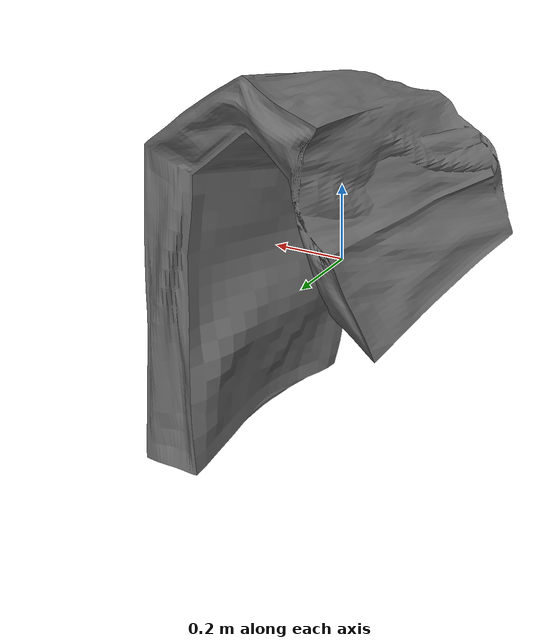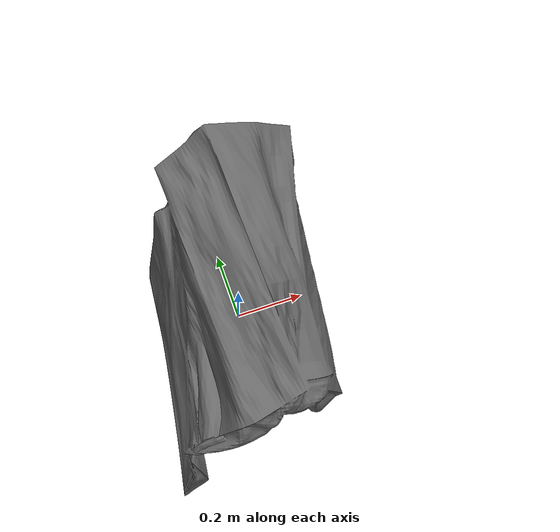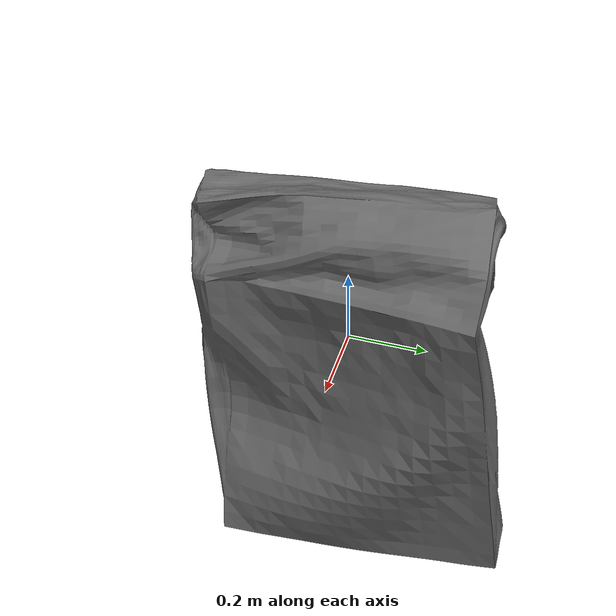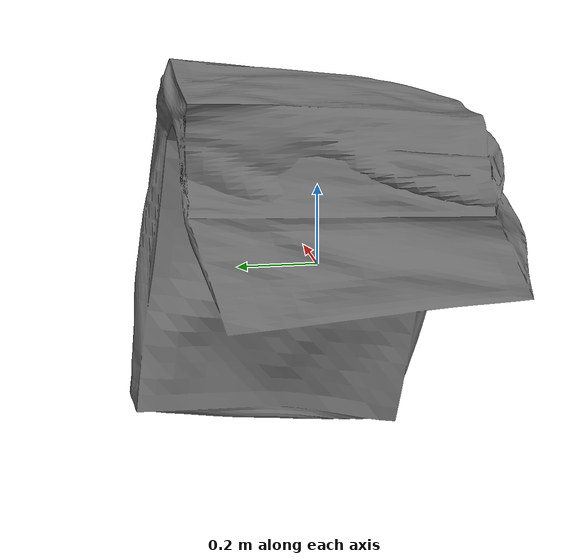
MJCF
<mujoco model="towels">
  <asset>
  <texture file="visual/ceramic.png" name="tex-towels" type="2d" />
  <material name="towels" reflectance="0.5" texrepeat="1 1" texture="tex-towels" texuniform="false" />
  <mesh file="visual/model_normalized_0.obj" name="model_normalized_0_vis" scale="1.0 1.0 1.0" /><mesh file="collision/model_normalized_collision_22.obj" name="model_normalized_collision_22._coll" scale="1.0 1.0 1.0" /><mesh file="collision/model_normalized_collision_4.obj" name="model_normalized_collision_4._coll" scale="1.0 1.0 1.0" /><mesh file="collision/model_normalized_collision_27.obj" name="model_normalized_collision_27._coll" scale="1.0 1.0 1.0" /><mesh file="collision/model_normalized_collision_6.obj" name="model_normalized_collision_6._coll" scale="1.0 1.0 1.0" /><mesh file="collision/model_normalized_collision_25.obj" name="model_normalized_collision_25._coll" scale="1.0 1.0 1.0" /><mesh file="collision/model_normalized_collision_26.obj" name="model_normalized_collision_26._coll" scale="1.0 1.0 1.0" /><mesh file="collision/model_normalized_collision_29.obj" name="model_normalized_collision_29._coll" scale="1.0 1.0 1.0" /><mesh file="collision/model_normalized_collision_19.obj" name="model_normalized_collision_19._coll" scale="1.0 1.0 1.0" /><mesh file="collision/model_normalized_collision_12.obj" name="model_normalized_collision_12._coll" scale="1.0 1.0 1.0" /><mesh file="collision/model_normalized_collision_17.obj" name="model_normalized_collision_17._coll" scale="1.0 1.0 1.0" /><mesh file="collision/model_normalized_collision_20.obj" name="model_normalized_collision_20._coll" scale="1.0 1.0 1.0" /><mesh file="collision/model_normalized_collision_14.obj" name="model_normalized_collision_14._coll" scale="1.0 1.0 1.0" /><mesh file="collision/model_normalized_collision_18.obj" name="model_normalized_collision_18._coll" scale="1.0 1.0 1.0" /><mesh file="collision/model_normalized_collision_15.obj" name="model_normalized_collision_15._coll" scale="1.0 1.0 1.0" /><mesh file="collision/model_normalized_collision_30.obj" name="model_normalized_collision_30._coll" scale="1.0 1.0 1.0" /><mesh file="collision/model_normalized_collision_31.obj" name="model_normalized_collision_31._coll" scale="1.0 1.0 1.0" /><mesh file="collision/model_normalized_collision_23.obj" name="model_normalized_collision_23._coll" scale="1.0 1.0 1.0" /><mesh file="collision/model_normalized_collision_28.obj" name="model_normalized_collision_28._coll" scale="1.0 1.0 1.0" /><mesh file="collision/model_normalized_collision_13.obj" name="model_normalized_collision_13._coll" scale="1.0 1.0 1.0" /><mesh file="collision/model_normalized_collision_5.obj" name="model_normalized_collision_5._coll" scale="1.0 1.0 1.0" /><mesh file="collision/model_normalized_collision_24.obj" name="model_normalized_collision_24._coll" scale="1.0 1.0 1.0" /><mesh file="collision/model_normalized_collision_16.obj" name="model_normalized_collision_16._coll" scale="1.0 1.0 1.0" /><mesh file="collision/model_normalized_collision_11.obj" name="model_normalized_collision_11._coll" scale="1.0 1.0 1.0" /><mesh file="collision/model_normalized_collision_1.obj" name="model_normalized_collision_1._coll" scale="1.0 1.0 1.0" /><mesh file="collision/model_normalized_collision_10.obj" name="model_normalized_collision_10._coll" scale="1.0 1.0 1.0" /><mesh file="collision/model_normalized_collision_21.obj" name="model_normalized_collision_21._coll" scale="1.0 1.0 1.0" /><mesh file="collision/model_normalized_collision_8.obj" name="model_normalized_collision_8._coll" scale="1.0 1.0 1.0" /><mesh file="collision/model_normalized_collision_7.obj" name="model_normalized_collision_7._coll" scale="1.0 1.0 1.0" /><mesh file="collision/model_normalized_collision_3.obj" name="model_normalized_collision_3._coll" scale="1.0 1.0 1.0" /><mesh file="collision/model_normalized_collision_2.obj" name="model_normalized_collision_2._coll" scale="1.0 1.0 1.0" /><mesh file="collision/model_normalized_collision_9.obj" name="model_normalized_collision_9._coll" scale="1.0 1.0 1.0" /><mesh file="collision/model_normalized_collision_0.obj" name="model_normalized_collision_0._coll" scale="1.0 1.0 1.0" /><material name="material_0" specular="0.4000000000000001" shininess="0.001" rgba="0.40000000 0.40000000 0.40000000 1.0" /></asset>
  <worldbody>
    <body>
      <body name="object" euler="1.7 0 0">
      <geom solimp="0.998 0.998 0.001" solref="0.001 1" density="100" friction="0.95 0.3 0.1" type="mesh" mesh="model_normalized_0_vis" conaffinity="0" contype="0" group="1" material="material_0" />
      <geom solimp="0.998 0.998 0.001" solref="0.001 1" density="100" friction="0.95 0.3 0.1" type="mesh" mesh="model_normalized_collision_22._coll" group="0" rgba="0.8 0.8 0.8 0.0" /><geom solimp="0.998 0.998 0.001" solref="0.001 1" density="100" friction="0.95 0.3 0.1" type="mesh" mesh="model_normalized_collision_4._coll" group="0" rgba="0.8 0.8 0.8 0.0" /><geom solimp="0.998 0.998 0.001" solref="0.001 1" density="100" friction="0.95 0.3 0.1" type="mesh" mesh="model_normalized_collision_27._coll" group="0" rgba="0.8 0.8 0.8 0.0" /><geom solimp="0.998 0.998 0.001" solref="0.001 1" density="100" friction="0.95 0.3 0.1" type="mesh" mesh="model_normalized_collision_6._coll" group="0" rgba="0.8 0.8 0.8 0.0" /><geom solimp="0.998 0.998 0.001" solref="0.001 1" density="100" friction="0.95 0.3 0.1" type="mesh" mesh="model_normalized_collision_25._coll" group="0" rgba="0.8 0.8 0.8 0.0" /><geom solimp="0.998 0.998 0.001" solref="0.001 1" density="100" friction="0.95 0.3 0.1" type="mesh" mesh="model_normalized_collision_26._coll" group="0" rgba="0.8 0.8 0.8 0.0" /><geom solimp="0.998 0.998 0.001" solref="0.001 1" density="100" friction="0.95 0.3 0.1" type="mesh" mesh="model_normalized_collision_29._coll" group="0" rgba="0.8 0.8 0.8 0.0" /><geom solimp="0.998 0.998 0.001" solref="0.001 1" density="100" friction="0.95 0.3 0.1" type="mesh" mesh="model_normalized_collision_19._coll" group="0" rgba="0.8 0.8 0.8 0.0" /><geom solimp="0.998 0.998 0.001" solref="0.001 1" density="100" friction="0.95 0.3 0.1" type="mesh" mesh="model_normalized_collision_12._coll" group="0" rgba="0.8 0.8 0.8 0.0" /><geom solimp="0.998 0.998 0.001" solref="0.001 1" density="100" friction="0.95 0.3 0.1" type="mesh" mesh="model_normalized_collision_17._coll" group="0" rgba="0.8 0.8 0.8 0.0" /><geom solimp="0.998 0.998 0.001" solref="0.001 1" density="100" friction="0.95 0.3 0.1" type="mesh" mesh="model_normalized_collision_20._coll" group="0" rgba="0.8 0.8 0.8 0.0" /><geom solimp="0.998 0.998 0.001" solref="0.001 1" density="100" friction="0.95 0.3 0.1" type="mesh" mesh="model_normalized_collision_14._coll" group="0" rgba="0.8 0.8 0.8 0.0" /><geom solimp="0.998 0.998 0.001" solref="0.001 1" density="100" friction="0.95 0.3 0.1" type="mesh" mesh="model_normalized_collision_18._coll" group="0" rgba="0.8 0.8 0.8 0.0" /><geom solimp="0.998 0.998 0.001" solref="0.001 1" density="100" friction="0.95 0.3 0.1" type="mesh" mesh="model_normalized_collision_15._coll" group="0" rgba="0.8 0.8 0.8 0.0" /><geom solimp="0.998 0.998 0.001" solref="0.001 1" density="100" friction="0.95 0.3 0.1" type="mesh" mesh="model_normalized_collision_30._coll" group="0" rgba="0.8 0.8 0.8 0.0" /><geom solimp="0.998 0.998 0.001" solref="0.001 1" density="100" friction="0.95 0.3 0.1" type="mesh" mesh="model_normalized_collision_31._coll" group="0" rgba="0.8 0.8 0.8 0.0" /><geom solimp="0.998 0.998 0.001" solref="0.001 1" density="100" friction="0.95 0.3 0.1" type="mesh" mesh="model_normalized_collision_23._coll" group="0" rgba="0.8 0.8 0.8 0.0" /><geom solimp="0.998 0.998 0.001" solref="0.001 1" density="100" friction="0.95 0.3 0.1" type="mesh" mesh="model_normalized_collision_28._coll" group="0" rgba="0.8 0.8 0.8 0.0" /><geom solimp="0.998 0.998 0.001" solref="0.001 1" density="100" friction="0.95 0.3 0.1" type="mesh" mesh="model_normalized_collision_13._coll" group="0" rgba="0.8 0.8 0.8 0.0" /><geom solimp="0.998 0.998 0.001" solref="0.001 1" density="100" friction="0.95 0.3 0.1" type="mesh" mesh="model_normalized_collision_5._coll" group="0" rgba="0.8 0.8 0.8 0.0" /><geom solimp="0.998 0.998 0.001" solref="0.001 1" density="100" friction="0.95 0.3 0.1" type="mesh" mesh="model_normalized_collision_24._coll" group="0" rgba="0.8 0.8 0.8 0.0" /><geom solimp="0.998 0.998 0.001" solref="0.001 1" density="100" friction="0.95 0.3 0.1" type="mesh" mesh="model_normalized_collision_16._coll" group="0" rgba="0.8 0.8 0.8 0.0" /><geom solimp="0.998 0.998 0.001" solref="0.001 1" density="100" friction="0.95 0.3 0.1" type="mesh" mesh="model_normalized_collision_11._coll" group="0" rgba="0.8 0.8 0.8 0.0" /><geom solimp="0.998 0.998 0.001" solref="0.001 1" density="100" friction="0.95 0.3 0.1" type="mesh" mesh="model_normalized_collision_1._coll" group="0" rgba="0.8 0.8 0.8 0.0" /><geom solimp="0.998 0.998 0.001" solref="0.001 1" density="100" friction="0.95 0.3 0.1" type="mesh" mesh="model_normalized_collision_10._coll" group="0" rgba="0.8 0.8 0.8 0.0" /><geom solimp="0.998 0.998 0.001" solref="0.001 1" density="100" friction="0.95 0.3 0.1" type="mesh" mesh="model_normalized_collision_21._coll" group="0" rgba="0.8 0.8 0.8 0.0" /><geom solimp="0.998 0.998 0.001" solref="0.001 1" density="100" friction="0.95 0.3 0.1" type="mesh" mesh="model_normalized_collision_8._coll" group="0" rgba="0.8 0.8 0.8 0.0" /><geom solimp="0.998 0.998 0.001" solref="0.001 1" density="100" friction="0.95 0.3 0.1" type="mesh" mesh="model_normalized_collision_7._coll" group="0" rgba="0.8 0.8 0.8 0.0" /><geom solimp="0.998 0.998 0.001" solref="0.001 1" density="100" friction="0.95 0.3 0.1" type="mesh" mesh="model_normalized_collision_3._coll" group="0" rgba="0.8 0.8 0.8 0.0" /><geom solimp="0.998 0.998 0.001" solref="0.001 1" density="100" friction="0.95 0.3 0.1" type="mesh" mesh="model_normalized_collision_2._coll" group="0" rgba="0.8 0.8 0.8 0.0" /><geom solimp="0.998 0.998 0.001" solref="0.001 1" density="100" friction="0.95 0.3 0.1" type="mesh" mesh="model_normalized_collision_9._coll" group="0" rgba="0.8 0.8 0.8 0.0" /><geom solimp="0.998 0.998 0.001" solref="0.001 1" density="100" friction="0.95 0.3 0.1" type="mesh" mesh="model_normalized_collision_0._coll" group="0" rgba="0.8 0.8 0.8 0.0" /></body>
      <site rgba="0 0 0 0" size="0.005" pos="0.00037966812347101087 -0.0015118260638050107 1.5075757520535709" name="bottom_site" />
      <site rgba="0 0 0 0" size="0.005" pos="0.00037966812347101087 -0.0015118260638050107 0.5075757674622619" name="top_site" />
      <site rgba="0 0 0 0" size="0.005" pos="0.3261372452814565 0.46060938804457696 7.704345494907727e-09" name="horizontal_radius_site" />
    </body>
  </worldbody>
</mujoco>
